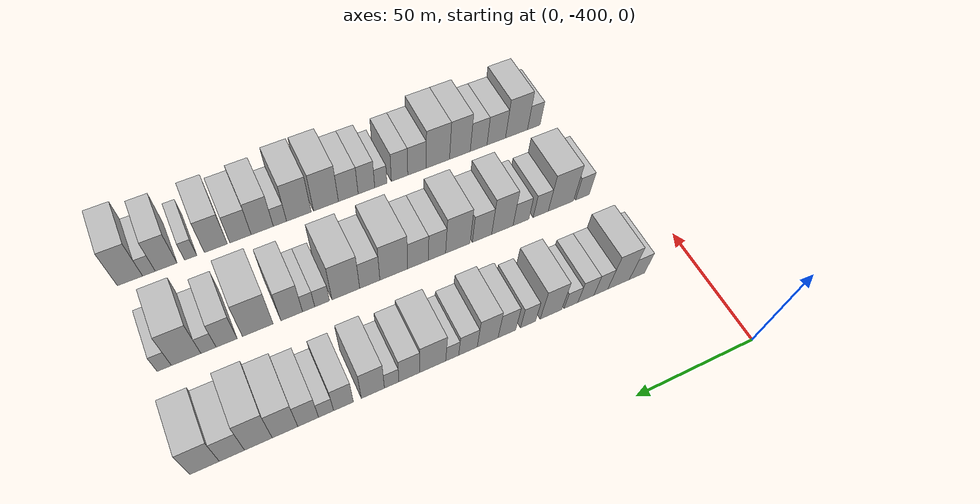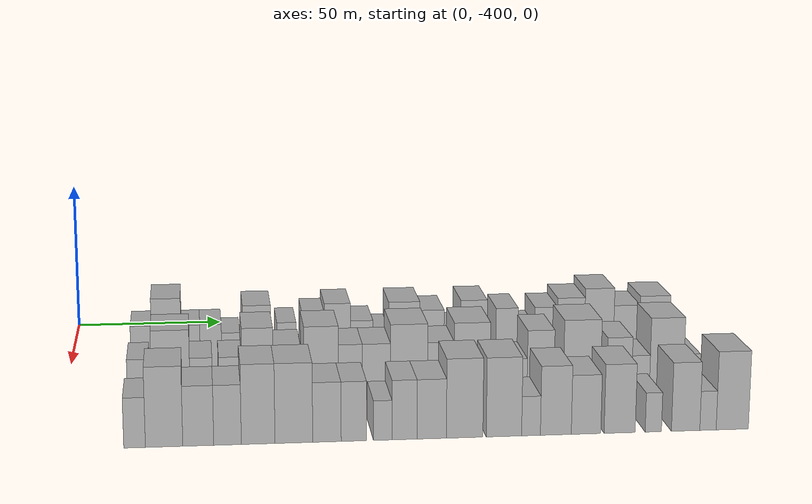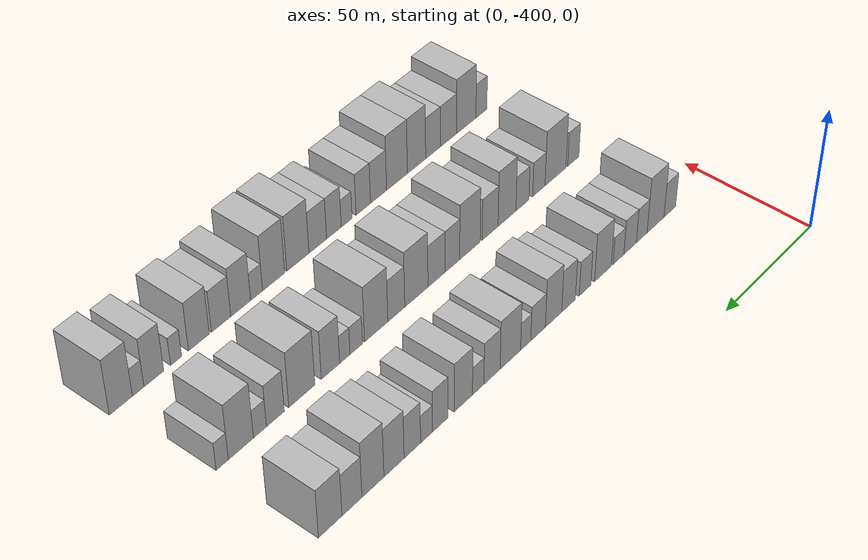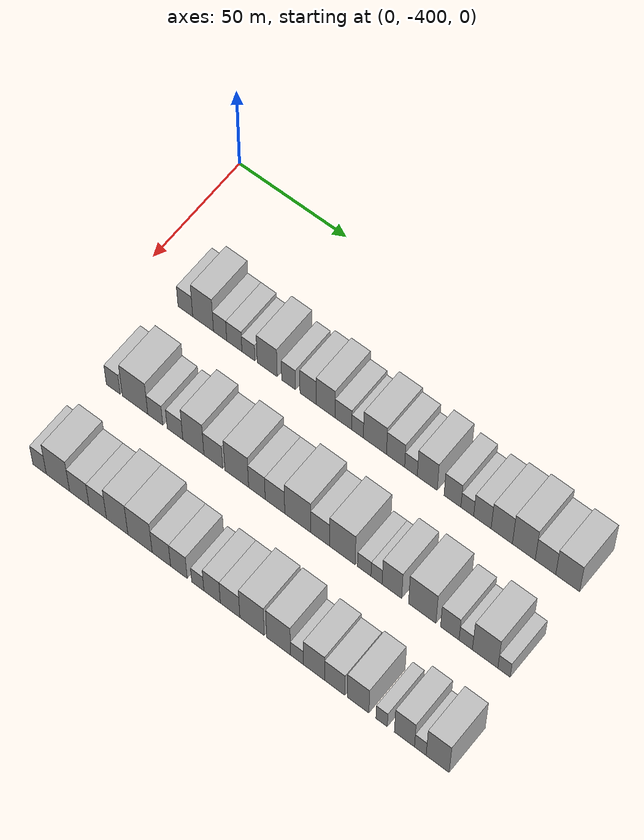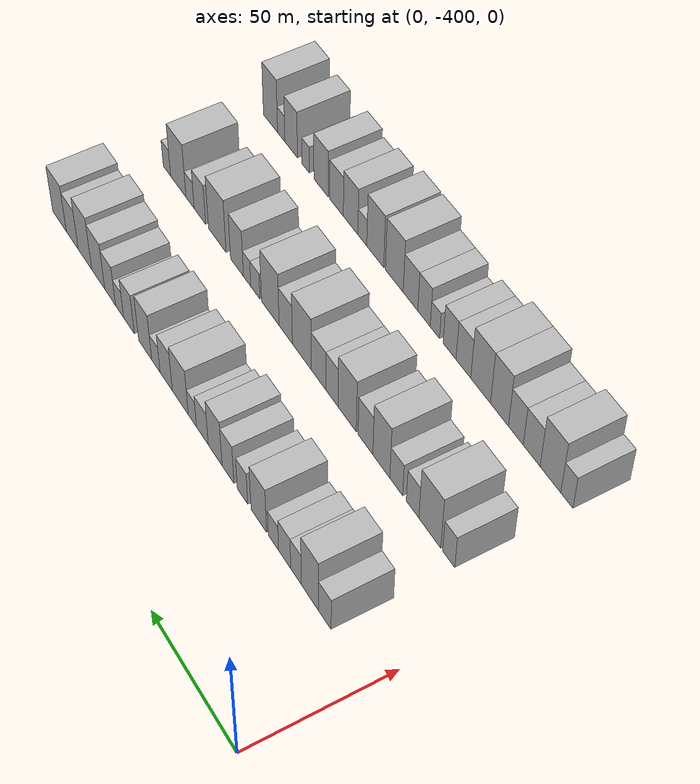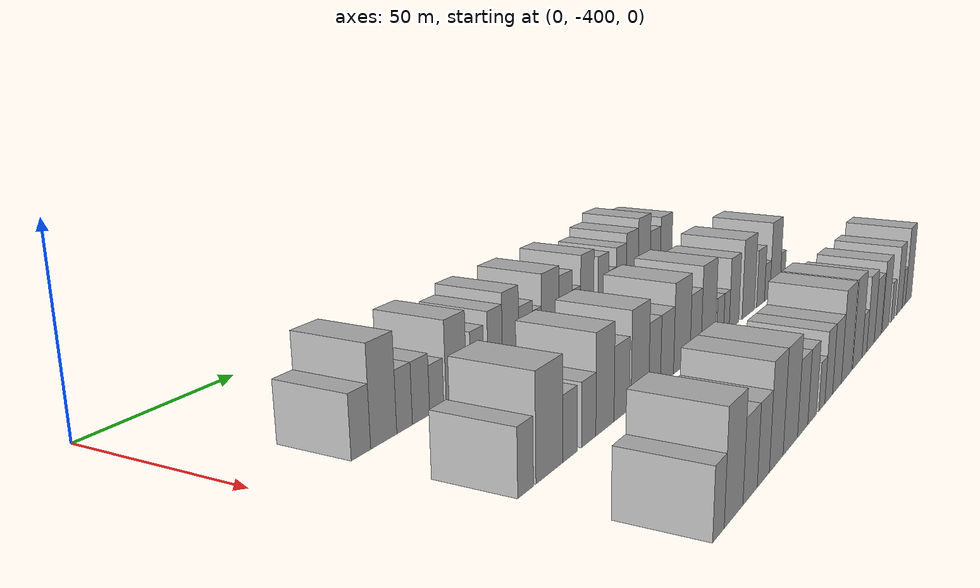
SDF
<sdf version="1.6">
 <world name="default">
  <model name="building_1">
   <static>1</static>
   <pose>50.0000 -376.5887 0 0.000000 0.000000 0.000000</pose>
   <link name="link">
    <pose>0 0 7.50 0 0 0</pose>
    <collision name="collision"><geometry><box><size>20.0000 6.8225 15.0000</size></box></geometry></collision>
    <visual name="visual">
     <cast_shadows>0</cast_shadows>
     <geometry><box><size>20.0000 6.8225 15.0000</size></box></geometry>
     <material>
      <script>
       <uri>model://HANNAS_wall/materials/scripts</uri>
       <uri>model://HANNAS_wall/materials/textures</uri>
       <name>vrc/HANNAS_wall</name>
      </script>
     </material>
    </visual>
   </link>
  </model>
  <model name="building_2">
   <static>1</static>
   <pose>50.0000 -368.3572 0 0.000000 0.000000 0.000000</pose>
   <link name="link">
    <pose>0 0 12.00 0 0 0</pose>
    <collision name="collision"><geometry><box><size>20.0000 9.6405 24.0000</size></box></geometry></collision>
    <visual name="visual">
     <cast_shadows>0</cast_shadows>
     <geometry><box><size>20.0000 9.6405 24.0000</size></box></geometry>
     <material>
      <script>
       <uri>model://HANNAS_wall/materials/scripts</uri>
       <uri>model://HANNAS_wall/materials/textures</uri>
       <name>vrc/HANNAS_wall</name>
      </script>
     </material>
    </visual>
   </link>
  </model>
  <model name="building_3">
   <static>1</static>
   <pose>50.0000 -360.4878 0 0.000000 0.000000 0.000000</pose>
   <link name="link">
    <pose>0 0 7.50 0 0 0</pose>
    <collision name="collision"><geometry><box><size>20.0000 6.0983 15.0000</size></box></geometry></collision>
    <visual name="visual">
     <cast_shadows>0</cast_shadows>
     <geometry><box><size>20.0000 6.0983 15.0000</size></box></geometry>
     <material>
      <script>
       <uri>model://HANNAS_wall/materials/scripts</uri>
       <uri>model://HANNAS_wall/materials/textures</uri>
       <name>vrc/HANNAS_wall</name>
      </script>
     </material>
    </visual>
   </link>
  </model>
  <model name="building_4">
   <static>1</static>
   <pose>50.0000 -353.9359 0 0.000000 0.000000 0.000000</pose>
   <link name="link">
    <pose>0 0 7.50 0 0 0</pose>
    <collision name="collision"><geometry><box><size>20.0000 7.0055 15.0000</size></box></geometry></collision>
    <visual name="visual">
     <cast_shadows>0</cast_shadows>
     <geometry><box><size>20.0000 7.0055 15.0000</size></box></geometry>
     <material>
      <script>
       <uri>model://HANNAS_wall/materials/scripts</uri>
       <uri>model://HANNAS_wall/materials/textures</uri>
       <name>vrc/HANNAS_wall</name>
      </script>
     </material>
    </visual>
   </link>
  </model>
  <model name="building_5">
   <static>1</static>
   <pose>50.0000 -347.4356 0 0.000000 0.000000 0.000000</pose>
   <link name="link">
    <pose>0 0 6.00 0 0 0</pose>
    <collision name="collision"><geometry><box><size>20.0000 5.9953 12.0000</size></box></geometry></collision>
    <visual name="visual">
     <cast_shadows>0</cast_shadows>
     <geometry><box><size>20.0000 5.9953 12.0000</size></box></geometry>
     <material>
      <script>
       <uri>model://HANNAS_wall/materials/scripts</uri>
       <uri>model://HANNAS_wall/materials/textures</uri>
       <name>vrc/HANNAS_wall</name>
      </script>
     </material>
    </visual>
   </link>
  </model>
  <model name="building_6">
   <static>1</static>
   <pose>50.0000 -338.8548 0 0.000000 0.000000 0.000000</pose>
   <link name="link">
    <pose>0 0 10.50 0 0 0</pose>
    <collision name="collision"><geometry><box><size>20.0000 9.1664 21.0000</size></box></geometry></collision>
    <visual name="visual">
     <cast_shadows>0</cast_shadows>
     <geometry><box><size>20.0000 9.1664 21.0000</size></box></geometry>
     <material>
      <script>
       <uri>model://HANNAS_wall/materials/scripts</uri>
       <uri>model://HANNAS_wall/materials/textures</uri>
       <name>vrc/HANNAS_wall</name>
      </script>
     </material>
    </visual>
   </link>
  </model>
  <model name="building_7">
   <static>1</static>
   <pose>50.0000 -329.1180 0 0.000000 0.000000 0.000000</pose>
   <link name="link">
    <pose>0 0 7.50 0 0 0</pose>
    <collision name="collision"><geometry><box><size>20.0000 6.3071 15.0000</size></box></geometry></collision>
    <visual name="visual">
     <cast_shadows>0</cast_shadows>
     <geometry><box><size>20.0000 6.3071 15.0000</size></box></geometry>
     <material>
      <script>
       <uri>model://HANNAS_wall/materials/scripts</uri>
       <uri>model://HANNAS_wall/materials/textures</uri>
       <name>vrc/HANNAS_wall</name>
      </script>
     </material>
    </visual>
   </link>
  </model>
  <model name="building_8">
   <static>1</static>
   <pose>50.0000 -320.3116 0 0.000000 0.000000 0.000000</pose>
   <link name="link">
    <pose>0 0 9.00 0 0 0</pose>
    <collision name="collision"><geometry><box><size>20.0000 7.3059 18.0000</size></box></geometry></collision>
    <visual name="visual">
     <cast_shadows>0</cast_shadows>
     <geometry><box><size>20.0000 7.3059 18.0000</size></box></geometry>
     <material>
      <script>
       <uri>model://HANNAS_wall/materials/scripts</uri>
       <uri>model://HANNAS_wall/materials/textures</uri>
       <name>vrc/HANNAS_wall</name>
      </script>
     </material>
    </visual>
   </link>
  </model>
  <model name="building_9">
   <static>1</static>
   <pose>50.0000 -312.3739 0 0.000000 0.000000 0.000000</pose>
   <link name="link">
    <pose>0 0 10.50 0 0 0</pose>
    <collision name="collision"><geometry><box><size>20.0000 8.5694 21.0000</size></box></geometry></collision>
    <visual name="visual">
     <cast_shadows>0</cast_shadows>
     <geometry><box><size>20.0000 8.5694 21.0000</size></box></geometry>
     <material>
      <script>
       <uri>model://HANNAS_wall/materials/scripts</uri>
       <uri>model://HANNAS_wall/materials/textures</uri>
       <name>vrc/HANNAS_wall</name>
      </script>
     </material>
    </visual>
   </link>
  </model>
  <model name="building_10">
   <static>1</static>
   <pose>50.0000 -304.3528 0 0.000000 0.000000 0.000000</pose>
   <link name="link">
    <pose>0 0 7.50 0 0 0</pose>
    <collision name="collision"><geometry><box><size>20.0000 7.4729 15.0000</size></box></geometry></collision>
    <visual name="visual">
     <cast_shadows>0</cast_shadows>
     <geometry><box><size>20.0000 7.4729 15.0000</size></box></geometry>
     <material>
      <script>
       <uri>model://HANNAS_wall/materials/scripts</uri>
       <uri>model://HANNAS_wall/materials/textures</uri>
       <name>vrc/HANNAS_wall</name>
      </script>
     </material>
    </visual>
   </link>
  </model>
  <model name="building_11">
   <static>1</static>
   <pose>50.0000 -298.0110 0 0.000000 0.000000 0.000000</pose>
   <link name="link">
    <pose>0 0 6.00 0 0 0</pose>
    <collision name="collision"><geometry><box><size>20.0000 5.2107 12.0000</size></box></geometry></collision>
    <visual name="visual">
     <cast_shadows>0</cast_shadows>
     <geometry><box><size>20.0000 5.2107 12.0000</size></box></geometry>
     <material>
      <script>
       <uri>model://HANNAS_wall/materials/scripts</uri>
       <uri>model://HANNAS_wall/materials/textures</uri>
       <name>vrc/HANNAS_wall</name>
      </script>
     </material>
    </visual>
   </link>
  </model>
  <model name="building_12">
   <static>1</static>
   <pose>50.0000 -290.2466 0 0.000000 0.000000 0.000000</pose>
   <link name="link">
    <pose>0 0 10.50 0 0 0</pose>
    <collision name="collision"><geometry><box><size>20.0000 10.3182 21.0000</size></box></geometry></collision>
    <visual name="visual">
     <cast_shadows>0</cast_shadows>
     <geometry><box><size>20.0000 10.3182 21.0000</size></box></geometry>
     <material>
      <script>
       <uri>model://HANNAS_wall/materials/scripts</uri>
       <uri>model://HANNAS_wall/materials/textures</uri>
       <name>vrc/HANNAS_wall</name>
      </script>
     </material>
    </visual>
   </link>
  </model>
  <model name="building_13">
   <static>1</static>
   <pose>50.0000 -281.0567 0 0.000000 0.000000 0.000000</pose>
   <link name="link">
    <pose>0 0 9.00 0 0 0</pose>
    <collision name="collision"><geometry><box><size>20.0000 8.0616 18.0000</size></box></geometry></collision>
    <visual name="visual">
     <cast_shadows>0</cast_shadows>
     <geometry><box><size>20.0000 8.0616 18.0000</size></box></geometry>
     <material>
      <script>
       <uri>model://HANNAS_wall/materials/scripts</uri>
       <uri>model://HANNAS_wall/materials/textures</uri>
       <name>vrc/HANNAS_wall</name>
      </script>
     </material>
    </visual>
   </link>
  </model>
  <model name="building_14">
   <static>1</static>
   <pose>50.0000 -274.2364 0 0.000000 0.000000 0.000000</pose>
   <link name="link">
    <pose>0 0 6.00 0 0 0</pose>
    <collision name="collision"><geometry><box><size>20.0000 5.5790 12.0000</size></box></geometry></collision>
    <visual name="visual">
     <cast_shadows>0</cast_shadows>
     <geometry><box><size>20.0000 5.5790 12.0000</size></box></geometry>
     <material>
      <script>
       <uri>model://HANNAS_wall/materials/scripts</uri>
       <uri>model://HANNAS_wall/materials/textures</uri>
       <name>vrc/HANNAS_wall</name>
      </script>
     </material>
    </visual>
   </link>
  </model>
  <model name="building_15">
   <static>1</static>
   <pose>50.0000 -267.0458 0 0.000000 0.000000 0.000000</pose>
   <link name="link">
    <pose>0 0 10.50 0 0 0</pose>
    <collision name="collision"><geometry><box><size>20.0000 8.8021 21.0000</size></box></geometry></collision>
    <visual name="visual">
     <cast_shadows>0</cast_shadows>
     <geometry><box><size>20.0000 8.8021 21.0000</size></box></geometry>
     <material>
      <script>
       <uri>model://HANNAS_wall/materials/scripts</uri>
       <uri>model://HANNAS_wall/materials/textures</uri>
       <name>vrc/HANNAS_wall</name>
      </script>
     </material>
    </visual>
   </link>
  </model>
  <model name="building_16">
   <static>1</static>
   <pose>50.0000 -255.9481 0 0.000000 0.000000 0.000000</pose>
   <link name="link">
    <pose>0 0 9.00 0 0 0</pose>
    <collision name="collision"><geometry><box><size>20.0000 7.3935 18.0000</size></box></geometry></collision>
    <visual name="visual">
     <cast_shadows>0</cast_shadows>
     <geometry><box><size>20.0000 7.3935 18.0000</size></box></geometry>
     <material>
      <script>
       <uri>model://HANNAS_wall/materials/scripts</uri>
       <uri>model://HANNAS_wall/materials/textures</uri>
       <name>vrc/HANNAS_wall</name>
      </script>
     </material>
    </visual>
   </link>
  </model>
  <model name="building_17">
   <static>1</static>
   <pose>50.0000 -249.4596 0 0.000000 0.000000 0.000000</pose>
   <link name="link">
    <pose>0 0 6.00 0 0 0</pose>
    <collision name="collision"><geometry><box><size>20.0000 5.5834 12.0000</size></box></geometry></collision>
    <visual name="visual">
     <cast_shadows>0</cast_shadows>
     <geometry><box><size>20.0000 5.5834 12.0000</size></box></geometry>
     <material>
      <script>
       <uri>model://HANNAS_wall/materials/scripts</uri>
       <uri>model://HANNAS_wall/materials/textures</uri>
       <name>vrc/HANNAS_wall</name>
      </script>
     </material>
    </visual>
   </link>
  </model>
  <model name="building_18">
   <static>1</static>
   <pose>50.0000 -242.8671 0 0.000000 0.000000 0.000000</pose>
   <link name="link">
    <pose>0 0 9.00 0 0 0</pose>
    <collision name="collision"><geometry><box><size>20.0000 7.6015 18.0000</size></box></geometry></collision>
    <visual name="visual">
     <cast_shadows>0</cast_shadows>
     <geometry><box><size>20.0000 7.6015 18.0000</size></box></geometry>
     <material>
      <script>
       <uri>model://HANNAS_wall/materials/scripts</uri>
       <uri>model://HANNAS_wall/materials/textures</uri>
       <name>vrc/HANNAS_wall</name>
      </script>
     </material>
    </visual>
   </link>
  </model>
  <model name="building_19">
   <static>1</static>
   <pose>50.0000 -234.4478 0 0.000000 0.000000 0.000000</pose>
   <link name="link">
    <pose>0 0 10.50 0 0 0</pose>
    <collision name="collision"><geometry><box><size>20.0000 9.2371 21.0000</size></box></geometry></collision>
    <visual name="visual">
     <cast_shadows>0</cast_shadows>
     <geometry><box><size>20.0000 9.2371 21.0000</size></box></geometry>
     <material>
      <script>
       <uri>model://HANNAS_wall/materials/scripts</uri>
       <uri>model://HANNAS_wall/materials/textures</uri>
       <name>vrc/HANNAS_wall</name>
      </script>
     </material>
    </visual>
   </link>
  </model>
  <model name="building_20">
   <static>1</static>
   <pose>50.0000 -224.8944 0 0.000000 0.000000 0.000000</pose>
   <link name="link">
    <pose>0 0 12.00 0 0 0</pose>
    <collision name="collision"><geometry><box><size>20.0000 9.8696 24.0000</size></box></geometry></collision>
    <visual name="visual">
     <cast_shadows>0</cast_shadows>
     <geometry><box><size>20.0000 9.8696 24.0000</size></box></geometry>
     <material>
      <script>
       <uri>model://HANNAS_wall/materials/scripts</uri>
       <uri>model://HANNAS_wall/materials/textures</uri>
       <name>vrc/HANNAS_wall</name>
      </script>
     </material>
    </visual>
   </link>
  </model>
  <model name="building_21">
   <static>1</static>
   <pose>50.0000 -215.5552 0 0.000000 0.000000 0.000000</pose>
   <link name="link">
    <pose>0 0 9.00 0 0 0</pose>
    <collision name="collision"><geometry><box><size>20.0000 8.8090 18.0000</size></box></geometry></collision>
    <visual name="visual">
     <cast_shadows>0</cast_shadows>
     <geometry><box><size>20.0000 8.8090 18.0000</size></box></geometry>
     <material>
      <script>
       <uri>model://HANNAS_wall/materials/scripts</uri>
       <uri>model://HANNAS_wall/materials/textures</uri>
       <name>vrc/HANNAS_wall</name>
      </script>
     </material>
    </visual>
   </link>
  </model>
  <model name="building_22">
   <static>1</static>
   <pose>50.0000 -206.0367 0 0.000000 0.000000 0.000000</pose>
   <link name="link">
    <pose>0 0 10.50 0 0 0</pose>
    <collision name="collision"><geometry><box><size>20.0000 10.2279 21.0000</size></box></geometry></collision>
    <visual name="visual">
     <cast_shadows>0</cast_shadows>
     <geometry><box><size>20.0000 10.2279 21.0000</size></box></geometry>
     <material>
      <script>
       <uri>model://HANNAS_wall/materials/scripts</uri>
       <uri>model://HANNAS_wall/materials/textures</uri>
       <name>vrc/HANNAS_wall</name>
      </script>
     </material>
    </visual>
   </link>
  </model>
  <model name="building_86">
   <static>1</static>
   <pose>90.0000 -376.8003 0 0.000000 0.000000 0.000000</pose>
   <link name="link">
    <pose>0 0 7.50 0 0 0</pose>
    <collision name="collision"><geometry><box><size>20.0000 6.3994 15.0000</size></box></geometry></collision>
    <visual name="visual">
     <cast_shadows>0</cast_shadows>
     <geometry><box><size>20.0000 6.3994 15.0000</size></box></geometry>
     <material>
      <script>
       <uri>model://HANNAS_wall/materials/scripts</uri>
       <uri>model://HANNAS_wall/materials/textures</uri>
       <name>vrc/HANNAS_wall</name>
      </script>
     </material>
    </visual>
   </link>
  </model>
  <model name="building_87">
   <static>1</static>
   <pose>90.0000 -366.7264 0 0.000000 0.000000 0.000000</pose>
   <link name="link">
    <pose>0 0 12.00 0 0 0</pose>
    <collision name="collision"><geometry><box><size>20.0000 11.7484 24.0000</size></box></geometry></collision>
    <visual name="visual">
     <cast_shadows>0</cast_shadows>
     <geometry><box><size>20.0000 11.7484 24.0000</size></box></geometry>
     <material>
      <script>
       <uri>model://HANNAS_wall/materials/scripts</uri>
       <uri>model://HANNAS_wall/materials/textures</uri>
       <name>vrc/HANNAS_wall</name>
      </script>
     </material>
    </visual>
   </link>
  </model>
  <model name="building_88">
   <static>1</static>
   <pose>90.0000 -357.4056 0 0.000000 0.000000 0.000000</pose>
   <link name="link">
    <pose>0 0 7.50 0 0 0</pose>
    <collision name="collision"><geometry><box><size>20.0000 6.8931 15.0000</size></box></geometry></collision>
    <visual name="visual">
     <cast_shadows>0</cast_shadows>
     <geometry><box><size>20.0000 6.8931 15.0000</size></box></geometry>
     <material>
      <script>
       <uri>model://HANNAS_wall/materials/scripts</uri>
       <uri>model://HANNAS_wall/materials/textures</uri>
       <name>vrc/HANNAS_wall</name>
      </script>
     </material>
    </visual>
   </link>
  </model>
  <model name="building_89">
   <static>1</static>
   <pose>90.0000 -348.3918 0 0.000000 0.000000 0.000000</pose>
   <link name="link">
    <pose>0 0 7.50 0 0 0</pose>
    <collision name="collision"><geometry><box><size>20.0000 7.1345 15.0000</size></box></geometry></collision>
    <visual name="visual">
     <cast_shadows>0</cast_shadows>
     <geometry><box><size>20.0000 7.1345 15.0000</size></box></geometry>
     <material>
      <script>
       <uri>model://HANNAS_wall/materials/scripts</uri>
       <uri>model://HANNAS_wall/materials/textures</uri>
       <name>vrc/HANNAS_wall</name>
      </script>
     </material>
    </visual>
   </link>
  </model>
  <model name="building_90">
   <static>1</static>
   <pose>90.0000 -340.0204 0 0.000000 0.000000 0.000000</pose>
   <link name="link">
    <pose>0 0 12.00 0 0 0</pose>
    <collision name="collision"><geometry><box><size>20.0000 9.6082 24.0000</size></box></geometry></collision>
    <visual name="visual">
     <cast_shadows>0</cast_shadows>
     <geometry><box><size>20.0000 9.6082 24.0000</size></box></geometry>
     <material>
      <script>
       <uri>model://HANNAS_wall/materials/scripts</uri>
       <uri>model://HANNAS_wall/materials/textures</uri>
       <name>vrc/HANNAS_wall</name>
      </script>
     </material>
    </visual>
   </link>
  </model>
  <model name="building_91">
   <static>1</static>
   <pose>90.0000 -330.9586 0 0.000000 0.000000 0.000000</pose>
   <link name="link">
    <pose>0 0 9.00 0 0 0</pose>
    <collision name="collision"><geometry><box><size>20.0000 8.5153 18.0000</size></box></geometry></collision>
    <visual name="visual">
     <cast_shadows>0</cast_shadows>
     <geometry><box><size>20.0000 8.5153 18.0000</size></box></geometry>
     <material>
      <script>
       <uri>model://HANNAS_wall/materials/scripts</uri>
       <uri>model://HANNAS_wall/materials/textures</uri>
       <name>vrc/HANNAS_wall</name>
      </script>
     </material>
    </visual>
   </link>
  </model>
  <model name="building_92">
   <static>1</static>
   <pose>90.0000 -320.3709 0 0.000000 0.000000 0.000000</pose>
   <link name="link">
    <pose>0 0 12.00 0 0 0</pose>
    <collision name="collision"><geometry><box><size>20.0000 10.6602 24.0000</size></box></geometry></collision>
    <visual name="visual">
     <cast_shadows>0</cast_shadows>
     <geometry><box><size>20.0000 10.6602 24.0000</size></box></geometry>
     <material>
      <script>
       <uri>model://HANNAS_wall/materials/scripts</uri>
       <uri>model://HANNAS_wall/materials/textures</uri>
       <name>vrc/HANNAS_wall</name>
      </script>
     </material>
    </visual>
   </link>
  </model>
  <model name="building_93">
   <static>1</static>
   <pose>90.0000 -311.3164 0 0.000000 0.000000 0.000000</pose>
   <link name="link">
    <pose>0 0 9.00 0 0 0</pose>
    <collision name="collision"><geometry><box><size>20.0000 7.4488 18.0000</size></box></geometry></collision>
    <visual name="visual">
     <cast_shadows>0</cast_shadows>
     <geometry><box><size>20.0000 7.4488 18.0000</size></box></geometry>
     <material>
      <script>
       <uri>model://HANNAS_wall/materials/scripts</uri>
       <uri>model://HANNAS_wall/materials/textures</uri>
       <name>vrc/HANNAS_wall</name>
      </script>
     </material>
    </visual>
   </link>
  </model>
  <model name="building_94">
   <static>1</static>
   <pose>90.0000 -303.2216 0 0.000000 0.000000 0.000000</pose>
   <link name="link">
    <pose>0 0 9.00 0 0 0</pose>
    <collision name="collision"><geometry><box><size>20.0000 8.7408 18.0000</size></box></geometry></collision>
    <visual name="visual">
     <cast_shadows>0</cast_shadows>
     <geometry><box><size>20.0000 8.7408 18.0000</size></box></geometry>
     <material>
      <script>
       <uri>model://HANNAS_wall/materials/scripts</uri>
       <uri>model://HANNAS_wall/materials/textures</uri>
       <name>vrc/HANNAS_wall</name>
      </script>
     </material>
    </visual>
   </link>
  </model>
  <model name="building_95">
   <static>1</static>
   <pose>90.0000 -293.0494 0 0.000000 0.000000 0.000000</pose>
   <link name="link">
    <pose>0 0 12.00 0 0 0</pose>
    <collision name="collision"><geometry><box><size>20.0000 11.6035 24.0000</size></box></geometry></collision>
    <visual name="visual">
     <cast_shadows>0</cast_shadows>
     <geometry><box><size>20.0000 11.6035 24.0000</size></box></geometry>
     <material>
      <script>
       <uri>model://HANNAS_wall/materials/scripts</uri>
       <uri>model://HANNAS_wall/materials/textures</uri>
       <name>vrc/HANNAS_wall</name>
      </script>
     </material>
    </visual>
   </link>
  </model>
  <model name="building_96">
   <static>1</static>
   <pose>90.0000 -283.0969 0 0.000000 0.000000 0.000000</pose>
   <link name="link">
    <pose>0 0 9.00 0 0 0</pose>
    <collision name="collision"><geometry><box><size>20.0000 8.3014 18.0000</size></box></geometry></collision>
    <visual name="visual">
     <cast_shadows>0</cast_shadows>
     <geometry><box><size>20.0000 8.3014 18.0000</size></box></geometry>
     <material>
      <script>
       <uri>model://HANNAS_wall/materials/scripts</uri>
       <uri>model://HANNAS_wall/materials/textures</uri>
       <name>vrc/HANNAS_wall</name>
      </script>
     </material>
    </visual>
   </link>
  </model>
  <model name="building_97">
   <static>1</static>
   <pose>90.0000 -273.3204 0 0.000000 0.000000 0.000000</pose>
   <link name="link">
    <pose>0 0 12.00 0 0 0</pose>
    <collision name="collision"><geometry><box><size>20.0000 11.2514 24.0000</size></box></geometry></collision>
    <visual name="visual">
     <cast_shadows>0</cast_shadows>
     <geometry><box><size>20.0000 11.2514 24.0000</size></box></geometry>
     <material>
      <script>
       <uri>model://HANNAS_wall/materials/scripts</uri>
       <uri>model://HANNAS_wall/materials/textures</uri>
       <name>vrc/HANNAS_wall</name>
      </script>
     </material>
    </visual>
   </link>
  </model>
  <model name="building_98">
   <static>1</static>
   <pose>90.0000 -263.7369 0 0.000000 0.000000 0.000000</pose>
   <link name="link">
    <pose>0 0 6.00 0 0 0</pose>
    <collision name="collision"><geometry><box><size>20.0000 5.9156 12.0000</size></box></geometry></collision>
    <visual name="visual">
     <cast_shadows>0</cast_shadows>
     <geometry><box><size>20.0000 5.9156 12.0000</size></box></geometry>
     <material>
      <script>
       <uri>model://HANNAS_wall/materials/scripts</uri>
       <uri>model://HANNAS_wall/materials/textures</uri>
       <name>vrc/HANNAS_wall</name>
      </script>
     </material>
    </visual>
   </link>
  </model>
  <model name="building_99">
   <static>1</static>
   <pose>90.0000 -258.3542 0 0.000000 0.000000 0.000000</pose>
   <link name="link">
    <pose>0 0 6.00 0 0 0</pose>
    <collision name="collision"><geometry><box><size>20.0000 4.8498 12.0000</size></box></geometry></collision>
    <visual name="visual">
     <cast_shadows>0</cast_shadows>
     <geometry><box><size>20.0000 4.8498 12.0000</size></box></geometry>
     <material>
      <script>
       <uri>model://HANNAS_wall/materials/scripts</uri>
       <uri>model://HANNAS_wall/materials/textures</uri>
       <name>vrc/HANNAS_wall</name>
      </script>
     </material>
    </visual>
   </link>
  </model>
  <model name="building_100">
   <static>1</static>
   <pose>90.0000 -251.6720 0 0.000000 0.000000 0.000000</pose>
   <link name="link">
    <pose>0 0 10.50 0 0 0</pose>
    <collision name="collision"><geometry><box><size>20.0000 8.5146 21.0000</size></box></geometry></collision>
    <visual name="visual">
     <cast_shadows>0</cast_shadows>
     <geometry><box><size>20.0000 8.5146 21.0000</size></box></geometry>
     <material>
      <script>
       <uri>model://HANNAS_wall/materials/scripts</uri>
       <uri>model://HANNAS_wall/materials/textures</uri>
       <name>vrc/HANNAS_wall</name>
      </script>
     </material>
    </visual>
   </link>
  </model>
  <model name="building_101">
   <static>1</static>
   <pose>90.0000 -238.4926 0 0.000000 0.000000 0.000000</pose>
   <link name="link">
    <pose>0 0 12.00 0 0 0</pose>
    <collision name="collision"><geometry><box><size>20.0000 11.8440 24.0000</size></box></geometry></collision>
    <visual name="visual">
     <cast_shadows>0</cast_shadows>
     <geometry><box><size>20.0000 11.8440 24.0000</size></box></geometry>
     <material>
      <script>
       <uri>model://HANNAS_wall/materials/scripts</uri>
       <uri>model://HANNAS_wall/materials/textures</uri>
       <name>vrc/HANNAS_wall</name>
      </script>
     </material>
    </visual>
   </link>
  </model>
  <model name="building_102">
   <static>1</static>
   <pose>90.0000 -226.6006 0 0.000000 0.000000 0.000000</pose>
   <link name="link">
    <pose>0 0 9.00 0 0 0</pose>
    <collision name="collision"><geometry><box><size>20.0000 7.9400 18.0000</size></box></geometry></collision>
    <visual name="visual">
     <cast_shadows>0</cast_shadows>
     <geometry><box><size>20.0000 7.9400 18.0000</size></box></geometry>
     <material>
      <script>
       <uri>model://HANNAS_wall/materials/scripts</uri>
       <uri>model://HANNAS_wall/materials/textures</uri>
       <name>vrc/HANNAS_wall</name>
      </script>
     </material>
    </visual>
   </link>
  </model>
  <model name="building_103">
   <static>1</static>
   <pose>90.0000 -219.7716 0 0.000000 0.000000 0.000000</pose>
   <link name="link">
    <pose>0 0 6.00 0 0 0</pose>
    <collision name="collision"><geometry><box><size>20.0000 5.7180 12.0000</size></box></geometry></collision>
    <visual name="visual">
     <cast_shadows>0</cast_shadows>
     <geometry><box><size>20.0000 5.7180 12.0000</size></box></geometry>
     <material>
      <script>
       <uri>model://HANNAS_wall/materials/scripts</uri>
       <uri>model://HANNAS_wall/materials/textures</uri>
       <name>vrc/HANNAS_wall</name>
      </script>
     </material>
    </visual>
   </link>
  </model>
  <model name="building_104">
   <static>1</static>
   <pose>90.0000 -211.4752 0 0.000000 0.000000 0.000000</pose>
   <link name="link">
    <pose>0 0 12.00 0 0 0</pose>
    <collision name="collision"><geometry><box><size>20.0000 10.8749 24.0000</size></box></geometry></collision>
    <visual name="visual">
     <cast_shadows>0</cast_shadows>
     <geometry><box><size>20.0000 10.8749 24.0000</size></box></geometry>
     <material>
      <script>
       <uri>model://HANNAS_wall/materials/scripts</uri>
       <uri>model://HANNAS_wall/materials/textures</uri>
       <name>vrc/HANNAS_wall</name>
      </script>
     </material>
    </visual>
   </link>
  </model>
  <model name="building_105">
   <static>1</static>
   <pose>90.0000 -203.4209 0 0.000000 0.000000 0.000000</pose>
   <link name="link">
    <pose>0 0 6.00 0 0 0</pose>
    <collision name="collision"><geometry><box><size>20.0000 5.2337 12.0000</size></box></geometry></collision>
    <visual name="visual">
     <cast_shadows>0</cast_shadows>
     <geometry><box><size>20.0000 5.2337 12.0000</size></box></geometry>
     <material>
      <script>
       <uri>model://HANNAS_wall/materials/scripts</uri>
       <uri>model://HANNAS_wall/materials/textures</uri>
       <name>vrc/HANNAS_wall</name>
      </script>
     </material>
    </visual>
   </link>
  </model>
  <model name="building_166">
   <static>1</static>
   <pose>130.0000 -376.9073 0 0.000000 0.000000 0.000000</pose>
   <link name="link">
    <pose>0 0 7.50 0 0 0</pose>
    <collision name="collision"><geometry><box><size>20.0000 6.1854 15.0000</size></box></geometry></collision>
    <visual name="visual">
     <cast_shadows>0</cast_shadows>
     <geometry><box><size>20.0000 6.1854 15.0000</size></box></geometry>
     <material>
      <script>
       <uri>model://HANNAS_wall/materials/scripts</uri>
       <uri>model://HANNAS_wall/materials/textures</uri>
       <name>vrc/HANNAS_wall</name>
      </script>
     </material>
    </visual>
   </link>
  </model>
  <model name="building_167">
   <static>1</static>
   <pose>130.0000 -368.4614 0 0.000000 0.000000 0.000000</pose>
   <link name="link">
    <pose>0 0 12.00 0 0 0</pose>
    <collision name="collision"><geometry><box><size>20.0000 10.7063 24.0000</size></box></geometry></collision>
    <visual name="visual">
     <cast_shadows>0</cast_shadows>
     <geometry><box><size>20.0000 10.7063 24.0000</size></box></geometry>
     <material>
      <script>
       <uri>model://HANNAS_wall/materials/scripts</uri>
       <uri>model://HANNAS_wall/materials/textures</uri>
       <name>vrc/HANNAS_wall</name>
      </script>
     </material>
    </visual>
   </link>
  </model>
  <model name="building_168">
   <static>1</static>
   <pose>130.0000 -358.6635 0 0.000000 0.000000 0.000000</pose>
   <link name="link">
    <pose>0 0 9.00 0 0 0</pose>
    <collision name="collision"><geometry><box><size>20.0000 8.8896 18.0000</size></box></geometry></collision>
    <visual name="visual">
     <cast_shadows>0</cast_shadows>
     <geometry><box><size>20.0000 8.8896 18.0000</size></box></geometry>
     <material>
      <script>
       <uri>model://HANNAS_wall/materials/scripts</uri>
       <uri>model://HANNAS_wall/materials/textures</uri>
       <name>vrc/HANNAS_wall</name>
      </script>
     </material>
    </visual>
   </link>
  </model>
  <model name="building_169">
   <static>1</static>
   <pose>130.0000 -350.2442 0 0.000000 0.000000 0.000000</pose>
   <link name="link">
    <pose>0 0 9.00 0 0 0</pose>
    <collision name="collision"><geometry><box><size>20.0000 7.9490 18.0000</size></box></geometry></collision>
    <visual name="visual">
     <cast_shadows>0</cast_shadows>
     <geometry><box><size>20.0000 7.9490 18.0000</size></box></geometry>
     <material>
      <script>
       <uri>model://HANNAS_wall/materials/scripts</uri>
       <uri>model://HANNAS_wall/materials/textures</uri>
       <name>vrc/HANNAS_wall</name>
      </script>
     </material>
    </visual>
   </link>
  </model>
  <model name="building_170">
   <static>1</static>
   <pose>130.0000 -341.4046 0 0.000000 0.000000 0.000000</pose>
   <link name="link">
    <pose>0 0 12.00 0 0 0</pose>
    <collision name="collision"><geometry><box><size>20.0000 9.7301 24.0000</size></box></geometry></collision>
    <visual name="visual">
     <cast_shadows>0</cast_shadows>
     <geometry><box><size>20.0000 9.7301 24.0000</size></box></geometry>
     <material>
      <script>
       <uri>model://HANNAS_wall/materials/scripts</uri>
       <uri>model://HANNAS_wall/materials/textures</uri>
       <name>vrc/HANNAS_wall</name>
      </script>
     </material>
    </visual>
   </link>
  </model>
  <model name="building_171">
   <static>1</static>
   <pose>130.0000 -331.0729 0 0.000000 0.000000 0.000000</pose>
   <link name="link">
    <pose>0 0 12.00 0 0 0</pose>
    <collision name="collision"><geometry><box><size>20.0000 10.9334 24.0000</size></box></geometry></collision>
    <visual name="visual">
     <cast_shadows>0</cast_shadows>
     <geometry><box><size>20.0000 10.9334 24.0000</size></box></geometry>
     <material>
      <script>
       <uri>model://HANNAS_wall/materials/scripts</uri>
       <uri>model://HANNAS_wall/materials/textures</uri>
       <name>vrc/HANNAS_wall</name>
      </script>
     </material>
    </visual>
   </link>
  </model>
  <model name="building_172">
   <static>1</static>
   <pose>130.0000 -321.4630 0 0.000000 0.000000 0.000000</pose>
   <link name="link">
    <pose>0 0 9.00 0 0 0</pose>
    <collision name="collision"><geometry><box><size>20.0000 8.2864 18.0000</size></box></geometry></collision>
    <visual name="visual">
     <cast_shadows>0</cast_shadows>
     <geometry><box><size>20.0000 8.2864 18.0000</size></box></geometry>
     <material>
      <script>
       <uri>model://HANNAS_wall/materials/scripts</uri>
       <uri>model://HANNAS_wall/materials/textures</uri>
       <name>vrc/HANNAS_wall</name>
      </script>
     </material>
    </visual>
   </link>
  </model>
  <model name="building_173">
   <static>1</static>
   <pose>130.0000 -313.6163 0 0.000000 0.000000 0.000000</pose>
   <link name="link">
    <pose>0 0 9.00 0 0 0</pose>
    <collision name="collision"><geometry><box><size>20.0000 7.4069 18.0000</size></box></geometry></collision>
    <visual name="visual">
     <cast_shadows>0</cast_shadows>
     <geometry><box><size>20.0000 7.4069 18.0000</size></box></geometry>
     <material>
      <script>
       <uri>model://HANNAS_wall/materials/scripts</uri>
       <uri>model://HANNAS_wall/materials/textures</uri>
       <name>vrc/HANNAS_wall</name>
      </script>
     </material>
    </visual>
   </link>
  </model>
  <model name="building_174">
   <static>1</static>
   <pose>130.0000 -305.1989 0 0.000000 0.000000 0.000000</pose>
   <link name="link">
    <pose>0 0 6.00 0 0 0</pose>
    <collision name="collision"><geometry><box><size>20.0000 5.4279 12.0000</size></box></geometry></collision>
    <visual name="visual">
     <cast_shadows>0</cast_shadows>
     <geometry><box><size>20.0000 5.4279 12.0000</size></box></geometry>
     <material>
      <script>
       <uri>model://HANNAS_wall/materials/scripts</uri>
       <uri>model://HANNAS_wall/materials/textures</uri>
       <name>vrc/HANNAS_wall</name>
      </script>
     </material>
    </visual>
   </link>
  </model>
  <model name="building_175">
   <static>1</static>
   <pose>130.0000 -298.8262 0 0.000000 0.000000 0.000000</pose>
   <link name="link">
    <pose>0 0 9.00 0 0 0</pose>
    <collision name="collision"><geometry><box><size>20.0000 7.3175 18.0000</size></box></geometry></collision>
    <visual name="visual">
     <cast_shadows>0</cast_shadows>
     <geometry><box><size>20.0000 7.3175 18.0000</size></box></geometry>
     <material>
      <script>
       <uri>model://HANNAS_wall/materials/scripts</uri>
       <uri>model://HANNAS_wall/materials/textures</uri>
       <name>vrc/HANNAS_wall</name>
      </script>
     </material>
    </visual>
   </link>
  </model>
  <model name="building_176">
   <static>1</static>
   <pose>130.0000 -290.8506 0 0.000000 0.000000 0.000000</pose>
   <link name="link">
    <pose>0 0 9.00 0 0 0</pose>
    <collision name="collision"><geometry><box><size>20.0000 8.6337 18.0000</size></box></geometry></collision>
    <visual name="visual">
     <cast_shadows>0</cast_shadows>
     <geometry><box><size>20.0000 8.6337 18.0000</size></box></geometry>
     <material>
      <script>
       <uri>model://HANNAS_wall/materials/scripts</uri>
       <uri>model://HANNAS_wall/materials/textures</uri>
       <name>vrc/HANNAS_wall</name>
      </script>
     </material>
    </visual>
   </link>
  </model>
  <model name="building_177">
   <static>1</static>
   <pose>130.0000 -281.1590 0 0.000000 0.000000 0.000000</pose>
   <link name="link">
    <pose>0 0 12.00 0 0 0</pose>
    <collision name="collision"><geometry><box><size>20.0000 10.7495 24.0000</size></box></geometry></collision>
    <visual name="visual">
     <cast_shadows>0</cast_shadows>
     <geometry><box><size>20.0000 10.7495 24.0000</size></box></geometry>
     <material>
      <script>
       <uri>model://HANNAS_wall/materials/scripts</uri>
       <uri>model://HANNAS_wall/materials/textures</uri>
       <name>vrc/HANNAS_wall</name>
      </script>
     </material>
    </visual>
   </link>
  </model>
  <model name="building_178">
   <static>1</static>
   <pose>130.0000 -269.5500 0 0.000000 0.000000 0.000000</pose>
   <link name="link">
    <pose>0 0 12.00 0 0 0</pose>
    <collision name="collision"><geometry><box><size>20.0000 10.4684 24.0000</size></box></geometry></collision>
    <visual name="visual">
     <cast_shadows>0</cast_shadows>
     <geometry><box><size>20.0000 10.4684 24.0000</size></box></geometry>
     <material>
      <script>
       <uri>model://HANNAS_wall/materials/scripts</uri>
       <uri>model://HANNAS_wall/materials/textures</uri>
       <name>vrc/HANNAS_wall</name>
      </script>
     </material>
    </visual>
   </link>
  </model>
  <model name="building_179">
   <static>1</static>
   <pose>130.0000 -261.5274 0 0.000000 0.000000 0.000000</pose>
   <link name="link">
    <pose>0 0 6.00 0 0 0</pose>
    <collision name="collision"><geometry><box><size>20.0000 5.5769 12.0000</size></box></geometry></collision>
    <visual name="visual">
     <cast_shadows>0</cast_shadows>
     <geometry><box><size>20.0000 5.5769 12.0000</size></box></geometry>
     <material>
      <script>
       <uri>model://HANNAS_wall/materials/scripts</uri>
       <uri>model://HANNAS_wall/materials/textures</uri>
       <name>vrc/HANNAS_wall</name>
      </script>
     </material>
    </visual>
   </link>
  </model>
  <model name="building_180">
   <static>1</static>
   <pose>130.0000 -254.1453 0 0.000000 0.000000 0.000000</pose>
   <link name="link">
    <pose>0 0 10.50 0 0 0</pose>
    <collision name="collision"><geometry><box><size>20.0000 9.1873 21.0000</size></box></geometry></collision>
    <visual name="visual">
     <cast_shadows>0</cast_shadows>
     <geometry><box><size>20.0000 9.1873 21.0000</size></box></geometry>
     <material>
      <script>
       <uri>model://HANNAS_wall/materials/scripts</uri>
       <uri>model://HANNAS_wall/materials/textures</uri>
       <name>vrc/HANNAS_wall</name>
      </script>
     </material>
    </visual>
   </link>
  </model>
  <model name="building_181">
   <static>1</static>
   <pose>130.0000 -245.1549 0 0.000000 0.000000 0.000000</pose>
   <link name="link">
    <pose>0 0 9.00 0 0 0</pose>
    <collision name="collision"><geometry><box><size>20.0000 8.7935 18.0000</size></box></geometry></collision>
    <visual name="visual">
     <cast_shadows>0</cast_shadows>
     <geometry><box><size>20.0000 8.7935 18.0000</size></box></geometry>
     <material>
      <script>
       <uri>model://HANNAS_wall/materials/scripts</uri>
       <uri>model://HANNAS_wall/materials/textures</uri>
       <name>vrc/HANNAS_wall</name>
      </script>
     </material>
    </visual>
   </link>
  </model>
  <model name="building_182">
   <static>1</static>
   <pose>130.0000 -235.1082 0 0.000000 0.000000 0.000000</pose>
   <link name="link">
    <pose>0 0 10.50 0 0 0</pose>
    <collision name="collision"><geometry><box><size>20.0000 9.2998 21.0000</size></box></geometry></collision>
    <visual name="visual">
     <cast_shadows>0</cast_shadows>
     <geometry><box><size>20.0000 9.2998 21.0000</size></box></geometry>
     <material>
      <script>
       <uri>model://HANNAS_wall/materials/scripts</uri>
       <uri>model://HANNAS_wall/materials/textures</uri>
       <name>vrc/HANNAS_wall</name>
      </script>
     </material>
    </visual>
   </link>
  </model>
  <model name="building_183">
   <static>1</static>
   <pose>130.0000 -225.0162 0 0.000000 0.000000 0.000000</pose>
   <link name="link">
    <pose>0 0 6.00 0 0 0</pose>
    <collision name="collision"><geometry><box><size>20.0000 4.8842 12.0000</size></box></geometry></collision>
    <visual name="visual">
     <cast_shadows>0</cast_shadows>
     <geometry><box><size>20.0000 4.8842 12.0000</size></box></geometry>
     <material>
      <script>
       <uri>model://HANNAS_wall/materials/scripts</uri>
       <uri>model://HANNAS_wall/materials/textures</uri>
       <name>vrc/HANNAS_wall</name>
      </script>
     </material>
    </visual>
   </link>
  </model>
  <model name="building_184">
   <static>1</static>
   <pose>130.0000 -215.3024 0 0.000000 0.000000 0.000000</pose>
   <link name="link">
    <pose>0 0 10.50 0 0 0</pose>
    <collision name="collision"><geometry><box><size>20.0000 8.5435 21.0000</size></box></geometry></collision>
    <visual name="visual">
     <cast_shadows>0</cast_shadows>
     <geometry><box><size>20.0000 8.5435 21.0000</size></box></geometry>
     <material>
      <script>
       <uri>model://HANNAS_wall/materials/scripts</uri>
       <uri>model://HANNAS_wall/materials/textures</uri>
       <name>vrc/HANNAS_wall</name>
      </script>
     </material>
    </visual>
   </link>
  </model>
  <model name="building_185">
   <static>1</static>
   <pose>130.0000 -208.5613 0 0.000000 0.000000 0.000000</pose>
   <link name="link">
    <pose>0 0 6.00 0 0 0</pose>
    <collision name="collision"><geometry><box><size>20.0000 4.9387 12.0000</size></box></geometry></collision>
    <visual name="visual">
     <cast_shadows>0</cast_shadows>
     <geometry><box><size>20.0000 4.9387 12.0000</size></box></geometry>
     <material>
      <script>
       <uri>model://HANNAS_wall/materials/scripts</uri>
       <uri>model://HANNAS_wall/materials/textures</uri>
       <name>vrc/HANNAS_wall</name>
      </script>
     </material>
    </visual>
   </link>
  </model>
  <model name="building_186">
   <static>1</static>
   <pose>130.0000 -201.2247 0 0.000000 0.000000 0.000000</pose>
   <link name="link">
    <pose>0 0 12.00 0 0 0</pose>
    <collision name="collision"><geometry><box><size>20.0000 9.7345 24.0000</size></box></geometry></collision>
    <visual name="visual">
     <cast_shadows>0</cast_shadows>
     <geometry><box><size>20.0000 9.7345 24.0000</size></box></geometry>
     <material>
      <script>
       <uri>model://HANNAS_wall/materials/scripts</uri>
       <uri>model://HANNAS_wall/materials/textures</uri>
       <name>vrc/HANNAS_wall</name>
      </script>
     </material>
    </visual>
   </link>
  </model>
 </world>
</sdf>
